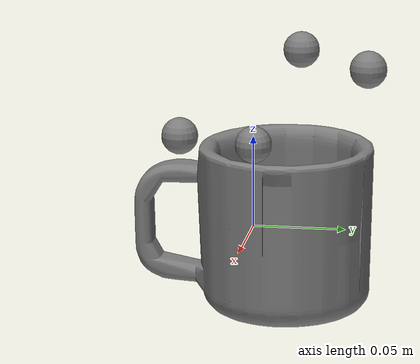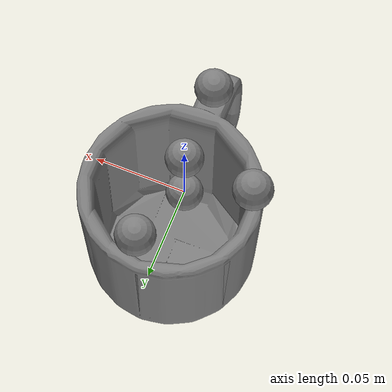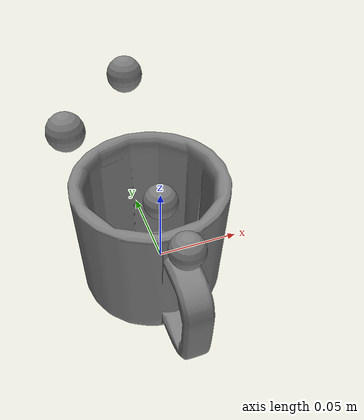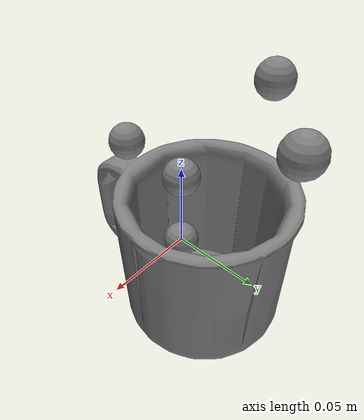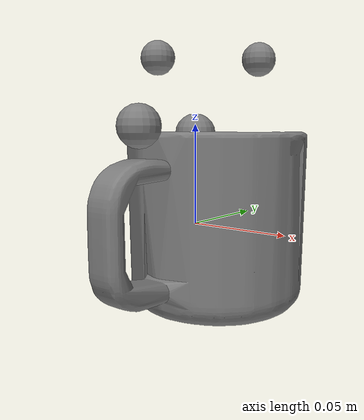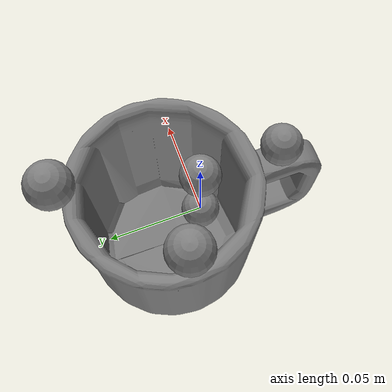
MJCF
<mujoco model="039_mug_8">
  <asset>
    <mesh name="039_mug_collision_8" file="039_mug_8.stl" scale="0.067 0.067 0.067"/>
  </asset>

  <worldbody>
<body name="039_mug_8">
  <geom name="039_mug_collision_8" type="mesh" mesh="039_mug_collision_8" />
  <site name="039_mug_8_keypoints_0" pos="0.0 0.061648308000000006 0.08906859400000001" size="0.01"/>
  <site name="039_mug_8_keypoints_1" pos="-0.042854071 0.020120837000000003 0.089056065" size="0.01"/>
  <site name="039_mug_8_keypoints_2" pos="0.0 -0.040173066 0.048849968" size="0.01"/>
  <site name="039_mug_8_keypoints_3" pos="0.0 0.0 0.0" size="0.01"/>
  <site name="039_mug_8_keypoints_4" pos="0.0 1.3735e-05 0.0455131" size="0.01"/>
</body>
  </worldbody>
</mujoco>
